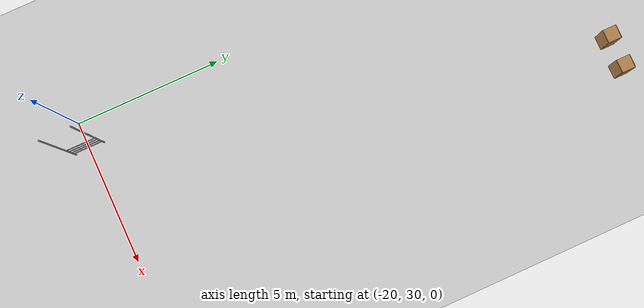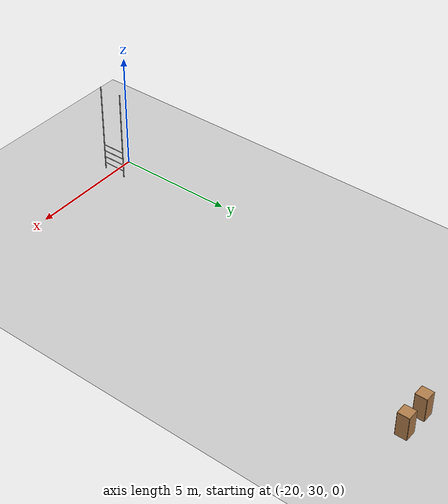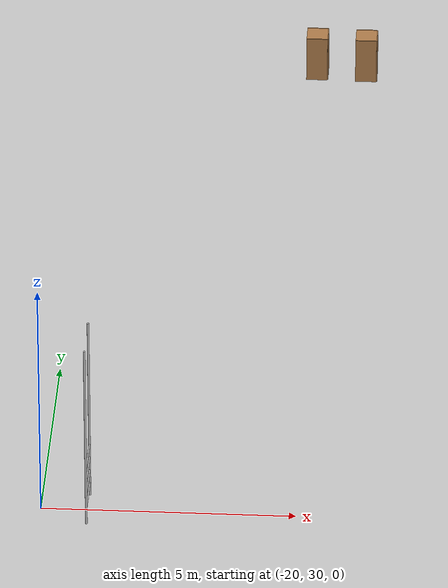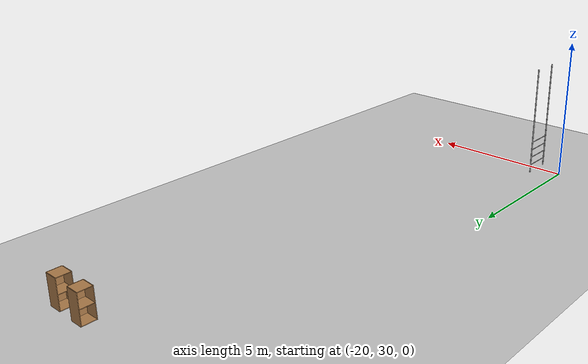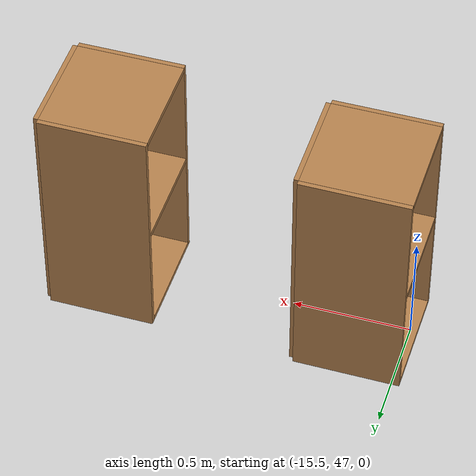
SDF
<sdf version="1.7">
 <world name="default">
  <light name="sun" type="directional">
   <pose>0 0 10 0 -0 0</pose>
   <diffuse>0.8 0.8 0.8 1</diffuse>
   <specular>0.2 0.2 0.2 1</specular>
   <attenuation>
    <range>1000</range>
    <constant>0.9</constant>
    <linear>0.01</linear>
    <quadratic>0.001</quadratic>
   </attenuation>
   <direction>-0.5 0.1 -0.9</direction>
   <spot><inner_angle>0</inner_angle><outer_angle>0</outer_angle><falloff>0</falloff></spot>
  </light>
  <model name="ground_plane">
   <static>1</static>
   <link name="link">
    <collision name="collision">
     <geometry><plane><normal>0 0 1</normal><size>100 100</size></plane></geometry>
     <surface>
      <contact><collide_bitmask>65535</collide_bitmask></contact>
      <friction><ode><mu>100</mu><mu2>50</mu2></ode></friction>
     </surface>
    </collision>
    <visual name="visual">
     <cast_shadows>0</cast_shadows>
     <geometry><plane><normal>0 0 1</normal><size>100 100</size></plane></geometry>
     <material>
      <script><uri>file://media/materials/scripts/gazebo.material</uri><name>Gazebo/Grey</name></script>
     </material>
    </visual>
   </link>
  </model>
  <gravity>0 0 -9.8</gravity>
  <magnetic_field>6e-06 2.3e-05 -4.2e-05</magnetic_field>
  <atmosphere type="adiabatic"/>
  <physics type="ode">
   <max_step_size>0.001</max_step_size>
   <real_time_factor>1</real_time_factor>
   <real_time_update_rate>1000</real_time_update_rate>
  </physics>
  <scene><ambient>0.4 0.4 0.4 1</ambient><background>0.7 0.7 0.7 1</background><shadows>1</shadows></scene>
  <spherical_coordinates>
   <surface_model>EARTH_WGS84</surface_model>
   <latitude_deg>0</latitude_deg>
   <longitude_deg>0</longitude_deg>
   <elevation>0</elevation>
   <heading_deg>0</heading_deg>
  </spherical_coordinates>
  <model name="ladder">
   <pose>-19.0769 30.0312 0 0 -0 0</pose>
   <static>1</static>
   <link name="link">
    <collision name="right_upright_collision">
     <pose>0 0.5 2 0 -0 0</pose>
     <geometry><cylinder><radius>0.022</radius><length>4</length></cylinder></geometry>
    </collision>
    <visual name="right_upright_visual">
     <pose>0 0.5 2 0 -0 0</pose>
     <geometry><cylinder><radius>0.022</radius><length>4</length></cylinder></geometry>
    </visual>
    <collision name="left_upright_collision">
     <pose>0 -0.5 2 0 -0 0</pose>
     <geometry><cylinder><radius>0.022</radius><length>4</length></cylinder></geometry>
    </collision>
    <visual name="left_upright_visual">
     <pose>0 -0.5 2 0 -0 0</pose>
     <geometry><cylinder><radius>0.022</radius><length>4</length></cylinder></geometry>
    </visual>
    <collision name="rung_1_collision">
     <pose>0 0 0.3 1.5707 -0 0</pose>
     <geometry><cylinder><radius>0.015</radius><length>1</length></cylinder></geometry>
    </collision>
    <visual name="rung_1_visual">
     <pose>0 0 0.3 1.5707 -0 0</pose>
     <geometry><cylinder><radius>0.015</radius><length>1</length></cylinder></geometry>
    </visual>
    <collision name="rung_2_collision">
     <pose>0 0 0.6 1.5707 -0 0</pose>
     <geometry><cylinder><radius>0.015</radius><length>1</length></cylinder></geometry>
    </collision>
    <visual name="rung_2_visual">
     <pose>0 0 0.6 1.5707 -0 0</pose>
     <geometry><cylinder><radius>0.015</radius><length>1</length></cylinder></geometry>
    </visual>
    <collision name="rung_3_collision">
     <pose>0 0 0.9 1.5707 -0 0</pose>
     <geometry><cylinder><radius>0.015</radius><length>1</length></cylinder></geometry>
    </collision>
    <visual name="rung_3_visual">
     <pose>0 0 0.9 1.5707 -0 0</pose>
     <geometry><cylinder><radius>0.015</radius><length>1</length></cylinder></geometry>
    </visual>
    <collision name="rung_4_collision">
     <pose>0 0 1.2 1.5707 -0 0</pose>
     <geometry><cylinder><radius>0.015</radius><length>1</length></cylinder></geometry>
    </collision>
    <visual name="rung_4_visual">
     <pose>0 0 1.2 1.5707 -0 0</pose>
     <geometry><cylinder><radius>0.015</radius><length>1</length></cylinder></geometry>
    </visual>
   </link>
  </model>
  <model name="cabinet">
   <static>1</static>
   <link name="cabinet_bottom_plate">
    <inertial>
     <pose>0 0 -1 0 -0 0</pose>
     <inertia><ixx>2.05</ixx><ixy>0</ixy><ixz>0</ixz><iyy>2.05</iyy><iyz>0</iyz><izz>2.05</izz></inertia>
     <mass>25</mass>
    </inertial>
    <collision name="cabinet_bottom_plate_geom">
     <pose>0 0 0.01 0 -0 0</pose>
     <geometry><box><size>0.45 0.45 0.02</size></box></geometry>
    </collision>
    <visual name="cabinet_bottom_plate_geom_visual">
     <pose>0 0 0.01 0 -0 0</pose>
     <geometry><box><size>0.45 0.45 0.02</size></box></geometry>
     <material>
      <script><uri>file://media/materials/scripts/gazebo.material</uri><name>Gazebo/Wood</name></script>
     </material>
    </visual>
    <collision name="cabinet_bottom_plate_geom_cabinet_back_plate">
     <pose>0.235 0 0.51 0 -0 0</pose>
     <geometry><box><size>0.02 0.45 1.02</size></box></geometry>
    </collision>
    <visual name="cabinet_bottom_plate_geom_cabinet_back_plate_visual">
     <pose>0.235 0 0.51 0 -0 0</pose>
     <geometry><box><size>0.02 0.45 1.02</size></box></geometry>
     <material>
      <script><uri>file://media/materials/scripts/gazebo.material</uri><name>Gazebo/Wood</name></script>
     </material>
    </visual>
    <collision name="cabinet_bottom_plate_geom_cabinet_left_plate">
     <pose>0 0.235 0.51 0 -0 0</pose>
     <geometry><box><size>0.45 0.02 1.02</size></box></geometry>
    </collision>
    <visual name="cabinet_bottom_plate_geom_cabinet_left_plate_visual">
     <pose>0 0.235 0.51 0 -0 0</pose>
     <geometry><box><size>0.45 0.02 1.02</size></box></geometry>
     <material>
      <script><uri>file://media/materials/scripts/gazebo.material</uri><name>Gazebo/Wood</name></script>
     </material>
    </visual>
    <collision name="cabinet_bottom_plate_geom_cabinet_middle_plate">
     <pose>0 0 0.51 0 -0 0</pose>
     <geometry><box><size>0.45 0.45 0.02</size></box></geometry>
    </collision>
    <visual name="cabinet_bottom_plate_geom_cabinet_middle_plate_visual">
     <pose>0 0 0.51 0 -0 0</pose>
     <geometry><box><size>0.45 0.45 0.02</size></box></geometry>
     <material>
      <script><uri>file://media/materials/scripts/gazebo.material</uri><name>Gazebo/Wood</name></script>
     </material>
    </visual>
    <collision name="cabinet_bottom_plate_geom_cabinet_right_plate">
     <pose>0 -0.235 0.51 0 -0 0</pose>
     <geometry><box><size>0.45 0.02 1.02</size></box></geometry>
    </collision>
    <visual name="cabinet_bottom_plate_geom_cabinet_right_plate_visual">
     <pose>0 -0.235 0.51 0 -0 0</pose>
     <geometry><box><size>0.45 0.02 1.02</size></box></geometry>
     <material>
      <script><uri>file://media/materials/scripts/gazebo.material</uri><name>Gazebo/Wood</name></script>
     </material>
    </visual>
    <collision name="cabinet_bottom_plate_geom_cabinet_top_plate">
     <pose>0 0 1.01 0 -0 0</pose>
     <geometry><box><size>0.45 0.45 0.02</size></box></geometry>
    </collision>
    <visual name="cabinet_bottom_plate_geom_cabinet_top_plate_visual">
     <pose>0 0 1.01 0 -0 0</pose>
     <geometry><box><size>0.45 0.45 0.02</size></box></geometry>
     <material>
      <script><uri>file://media/materials/scripts/gazebo.material</uri><name>Gazebo/Wood</name></script>
     </material>
    </visual>
   </link>
   <pose>-15.3079 47.0634 0 0 -0 0</pose>
  </model>
  <model name="cabinet_0">
   <static>1</static>
   <link name="cabinet_bottom_plate">
    <inertial>
     <pose>0 0 -1 0 -0 0</pose>
     <inertia><ixx>2.05</ixx><ixy>0</ixy><ixz>0</ixz><iyy>2.05</iyy><iyz>0</iyz><izz>2.05</izz></inertia>
     <mass>25</mass>
    </inertial>
    <collision name="cabinet_bottom_plate_geom">
     <pose>0 0 0.01 0 -0 0</pose>
     <geometry><box><size>0.45 0.45 0.02</size></box></geometry>
    </collision>
    <visual name="cabinet_bottom_plate_geom_visual">
     <pose>0 0 0.01 0 -0 0</pose>
     <geometry><box><size>0.45 0.45 0.02</size></box></geometry>
     <material>
      <script><uri>file://media/materials/scripts/gazebo.material</uri><name>Gazebo/Wood</name></script>
     </material>
    </visual>
    <collision name="cabinet_bottom_plate_geom_cabinet_back_plate">
     <pose>0.235 0 0.51 0 -0 0</pose>
     <geometry><box><size>0.02 0.45 1.02</size></box></geometry>
    </collision>
    <visual name="cabinet_bottom_plate_geom_cabinet_back_plate_visual">
     <pose>0.235 0 0.51 0 -0 0</pose>
     <geometry><box><size>0.02 0.45 1.02</size></box></geometry>
     <material>
      <script><uri>file://media/materials/scripts/gazebo.material</uri><name>Gazebo/Wood</name></script>
     </material>
    </visual>
    <collision name="cabinet_bottom_plate_geom_cabinet_left_plate">
     <pose>0 0.235 0.51 0 -0 0</pose>
     <geometry><box><size>0.45 0.02 1.02</size></box></geometry>
    </collision>
    <visual name="cabinet_bottom_plate_geom_cabinet_left_plate_visual">
     <pose>0 0.235 0.51 0 -0 0</pose>
     <geometry><box><size>0.45 0.02 1.02</size></box></geometry>
     <material>
      <script><uri>file://media/materials/scripts/gazebo.material</uri><name>Gazebo/Wood</name></script>
     </material>
    </visual>
    <collision name="cabinet_bottom_plate_geom_cabinet_middle_plate">
     <pose>0 0 0.51 0 -0 0</pose>
     <geometry><box><size>0.45 0.45 0.02</size></box></geometry>
    </collision>
    <visual name="cabinet_bottom_plate_geom_cabinet_middle_plate_visual">
     <pose>0 0 0.51 0 -0 0</pose>
     <geometry><box><size>0.45 0.45 0.02</size></box></geometry>
     <material>
      <script><uri>file://media/materials/scripts/gazebo.material</uri><name>Gazebo/Wood</name></script>
     </material>
    </visual>
    <collision name="cabinet_bottom_plate_geom_cabinet_right_plate">
     <pose>0 -0.235 0.51 0 -0 0</pose>
     <geometry><box><size>0.45 0.02 1.02</size></box></geometry>
    </collision>
    <visual name="cabinet_bottom_plate_geom_cabinet_right_plate_visual">
     <pose>0 -0.235 0.51 0 -0 0</pose>
     <geometry><box><size>0.45 0.02 1.02</size></box></geometry>
     <material>
      <script><uri>file://media/materials/scripts/gazebo.material</uri><name>Gazebo/Wood</name></script>
     </material>
    </visual>
    <collision name="cabinet_bottom_plate_geom_cabinet_top_plate">
     <pose>0 0 1.01 0 -0 0</pose>
     <geometry><box><size>0.45 0.45 0.02</size></box></geometry>
    </collision>
    <visual name="cabinet_bottom_plate_geom_cabinet_top_plate_visual">
     <pose>0 0 1.01 0 -0 0</pose>
     <geometry><box><size>0.45 0.45 0.02</size></box></geometry>
     <material>
      <script><uri>file://media/materials/scripts/gazebo.material</uri><name>Gazebo/Wood</name></script>
     </material>
    </visual>
   </link>
   <pose>-14.2459 47.0421 0 0 -0 0</pose>
  </model>
 </world>
</sdf>
